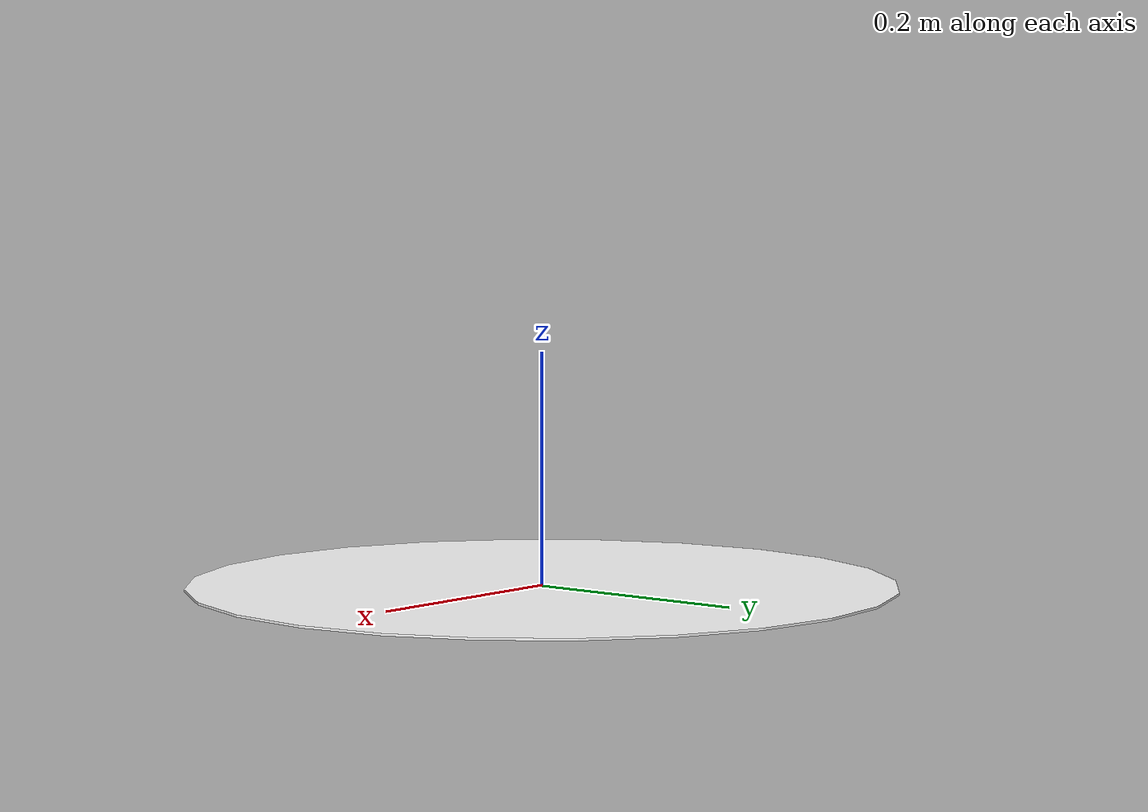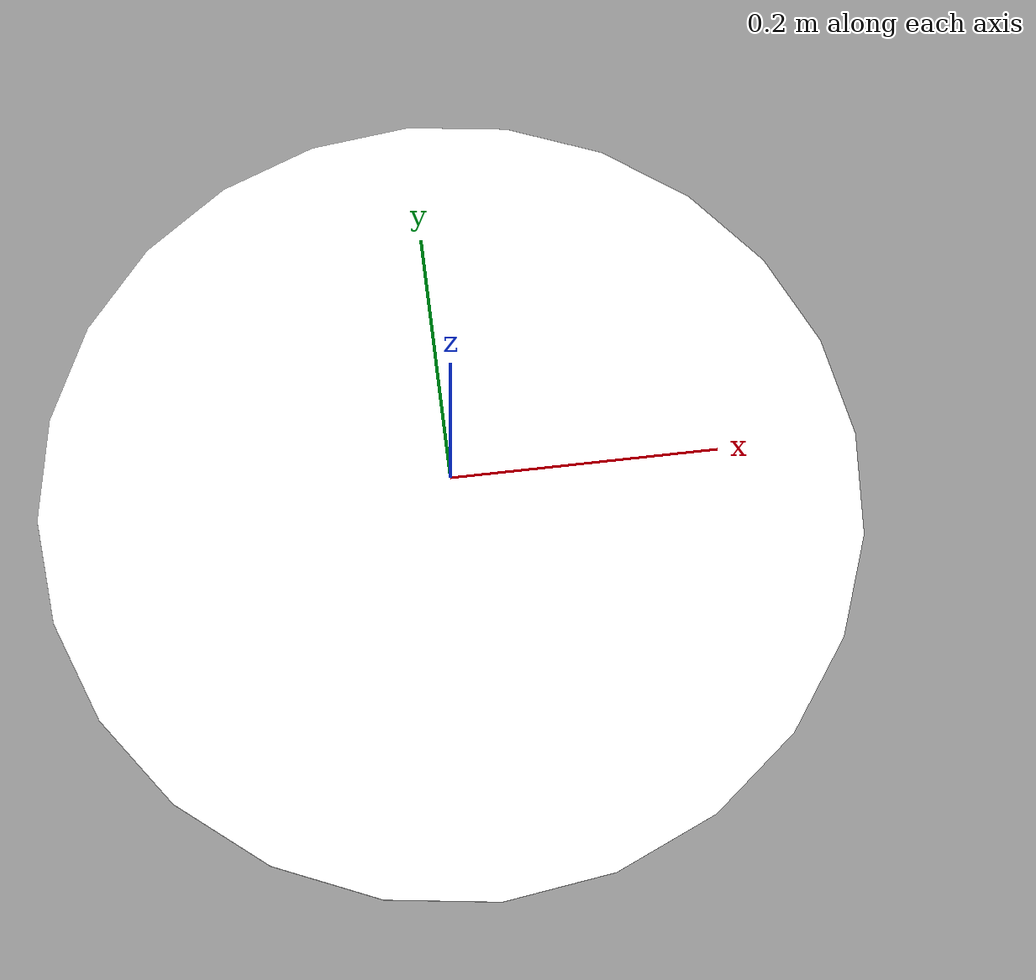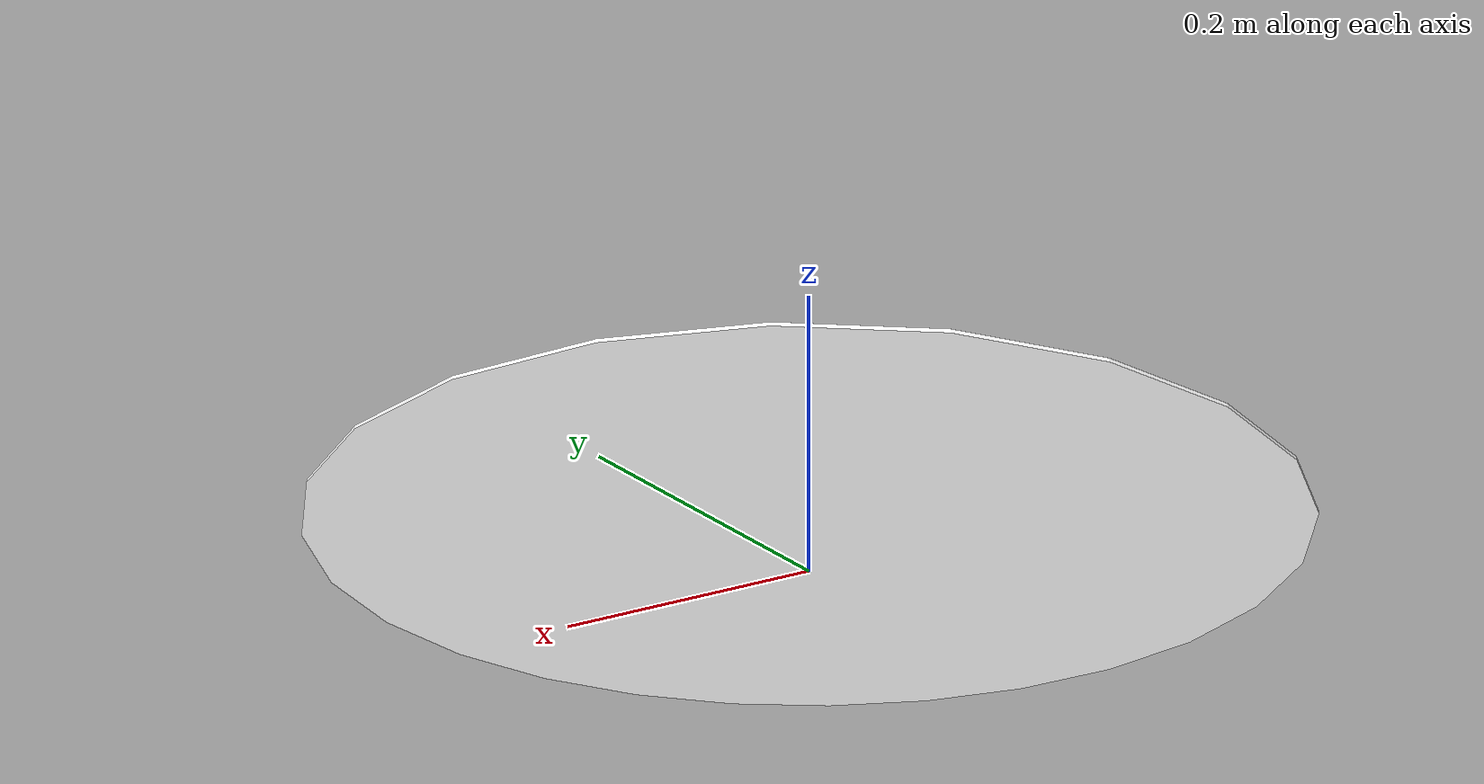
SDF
<?xml version="1.0" ?>
<sdf version="1.9">
  <model name="pothole">
    <static>true</static>
    <link name="pothole_link">
      <!-- Pose is relative to where you place the model in the world -->
      <pose>0 0 0.0 0 0 0</pose>

      <!-- Visual: thin white disk -->
      <visual name="pothole_visual">
        <geometry>
          <cylinder>
            <radius>0.3048</radius>
            <length>0.002</length>
          </cylinder>
        </geometry>
        <material>
          <ambient>1 1 1 1</ambient>
          <diffuse>1 1 1 1</diffuse>
          <specular>0 0 0 1</specular>
          <emissive>0.8 0.8 0.8 1</emissive>
        </material>
        <cast_shadows>false</cast_shadows>
      </visual>

      <!-- Collision: optional (keep it if want lidar to “see” it physically) -->
    </link>
  </model>
</sdf>
